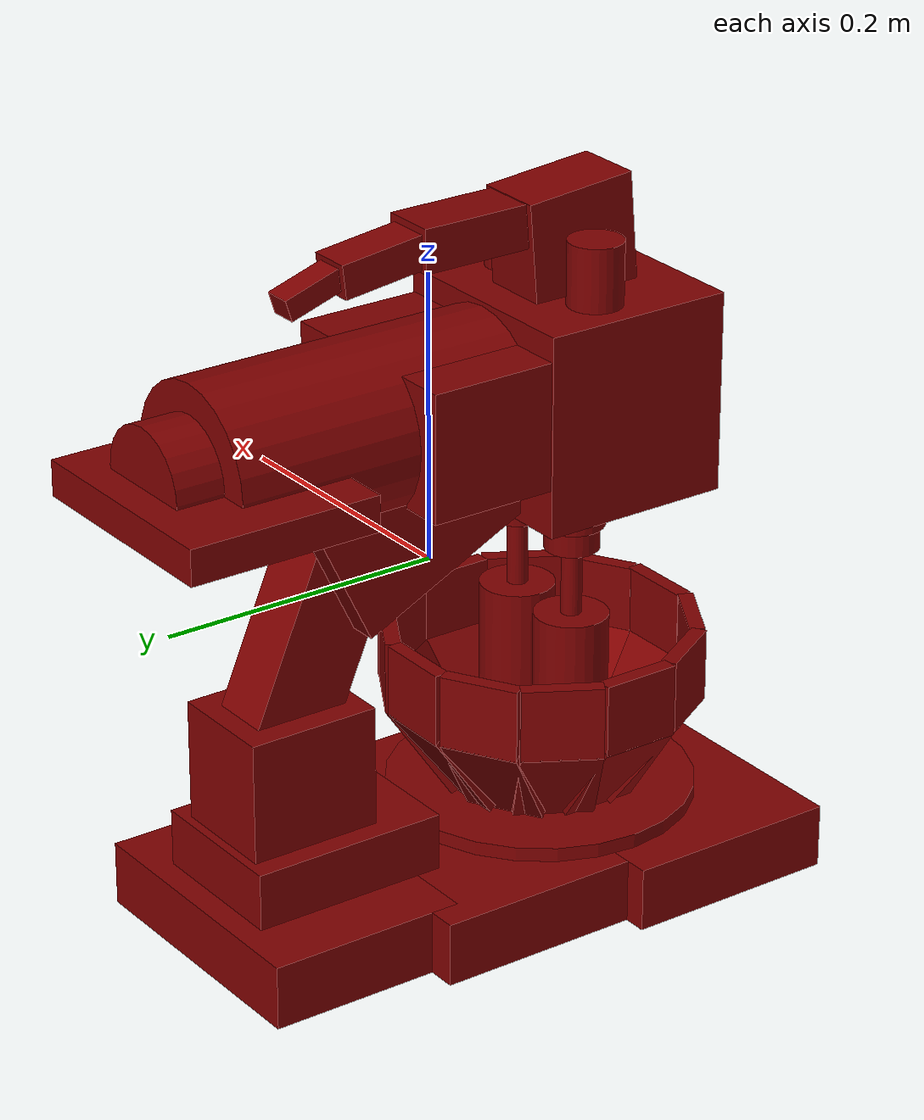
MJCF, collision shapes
<?xml version='1.0' encoding='UTF-8'?>
<mujoco model="model">
  <compiler angle="radian"/>
  <asset>
    <mesh file="visuals/Blender001.obj" name="Blender001_vis"/>
    <mesh file="visuals/Blender002.obj" name="Blender002_vis"/>
    <mesh file="visuals/Body001.obj" name="Body001_vis"/>
    <mesh file="visuals/Button001.obj" name="Button001_vis"/>
    <mesh file="visuals/Container001.obj" name="Container001_vis"/>
    <mesh file="visuals/Knob001.obj" name="Knob001_vis"/>
    <mesh file="visuals/Lid001.obj" name="Lid001_vis"/>
    <mesh file="visuals/Lid002.obj" name="Lid002_vis"/>
    <texture file="visuals/T_BC001.png" name="Body001_material" type="2d"/>
    <material name="Body001_material" rgba="1 1 1 1.0" texture="Body001_material" shininess="0.5" specular="0.3103448502657381"/>
    <texture file="visuals/T_BC001.png" name="Container001_material" type="2d"/>
    <material name="Container001_material" rgba="1 1 1 1.0" texture="Container001_material" shininess="0.5" specular="0.3103448502657381"/>
    <texture file="visuals/T_BC001.png" name="Lid001_material" type="2d"/>
    <material name="Lid001_material" rgba="1 1 1 1.0" texture="Lid001_material" shininess="0.5" specular="0.3103448502657381"/>
    <texture file="visuals/T_BC001.png" name="Blender001_material" type="2d"/>
    <material name="Blender001_material" rgba="1 1 1 1.0" texture="Blender001_material" shininess="5" specular="10"/>
    <texture file="visuals/T_BC001.png" name="Blender002_material" type="2d"/>
    <material name="Blender002_material" rgba="1 1 1 1.0" texture="Blender002_material" shininess="5" specular="10"/>
    <texture file="visuals/T_BC001.png" name="Button001_material" type="2d"/>
    <material name="Button001_material" rgba="1 1 1 1.0" texture="Button001_material" shininess="0.5" specular="0.3103448502657381"/>
    <texture file="visuals/T_BC001.png" name="Knob001_material" type="2d"/>
    <material name="Knob001_material" rgba="1 1 1 1.0" texture="Knob001_material" shininess="0.5" specular="0.3103448502657381"/>
    <texture file="visuals/T_BC001.png" name="Lid002_material" type="2d"/>
    <material name="Lid002_material" rgba="1 1 1 1.0" texture="Lid002_material" shininess="1" specular="1"/>
  </asset>
  <default>
    <default class="visual">
      <geom conaffinity="0" contype="0" group="1" type="mesh"/>
    </default>
    <default class="collision">
      <geom group="0" rgba="0.5 0 0 0.5"/>
    </default>
    <default class="spawn">
      <geom group="0" rgba="1 1 1 0.5" contype="0" conaffinity="0"/>
      <site group="0" rgba="1 1 1 0.5"/>
    </default>
    <default class="region">
      <geom group="1" conaffinity="0" contype="0" rgba="0 1 0 0"/>
    </default>
  </default>
  <worldbody>
    <body>
      <body name="object">
        <geom mesh="Body001_vis" type="mesh" solimp="0.998 0.998 0.001" solref="0.001 1" density="100" friction="0.95 0.3 0.1" class="visual" material="Body001_material"/>
        <geom class="collision" type="box" pos="4.897843278661619e-17 -0.15366870164871216 -0.22057925164699554" size="0.1356559693813324 0.07646315544843674 0.022550884634256363" quat="1.0 0.0 0.0 0.0"/>
        <geom class="collision" type="box" pos="4.897843278661619e-17 -0.008576542139053345 -0.22057925164699554" size="0.1193213015794754 0.07646191120147705 0.022550150752067566" quat="1.0 0.0 0.0 0.0"/>
        <geom class="collision" type="box" pos="4.897843278661619e-17 0.1180645227432251 -0.22057925164699554" size="0.09913986176252365 0.07030613720417023 0.022550884634256363" quat="1.0 0.0 0.0 0.0"/>
        <geom class="collision" type="box" pos="5.055353356542741e-17 0.10056693106889725 -0.18038208782672882" size="0.05379757285118103 0.07030418515205383 0.022550884634256363" quat="1.0 0.0 0.0 0.0"/>
        <geom class="collision" type="box" pos="5.055353356542741e-17 0.11744346469640732 -0.11538463085889816" size="0.03893378749489784 0.04708361625671387 0.042576249688863754" quat="1.0 0.0 0.0 0.0"/>
        <geom class="collision" type="box" pos="6.97932649224882e-17 0.09694836288690567 -0.028736550360918045" size="0.02191270887851715 0.030921725556254387 0.061389487236738205" quat="0.9798327088356018 0.1998196840286255 4.4369015145278743e-17 -2.040742456584048e-23"/>
        <geom class="collision" type="cylinder" pos="-2.527289488796214e-11 -0.09217732399702072 -0.19344469904899597" size="0.1068195328116417 0.005278684198856354" quat="1.0 0.0 0.0 0.0"/>
        <body name="Container001">
          <joint axis="0.0 0.0 1.0" pos="-6.419569444915396e-07 -0.09217473864555359 -0.13971681892871857" limited="true" name="Container001_joint" range="0.0 0.1" type="slide" damping="1" frictionloss="1" armature=".01" stiffness="0.05"/>
          <geom mesh="Container001_vis" type="mesh" solimp="0.998 0.998 0.001" solref="0.001 1" density="100" friction="0.95 0.3 0.1" class="visual" material="Container001_material"/>
          <geom class="collision" type="cylinder" pos="3.582163454751708e-10 -0.09217731654644012 -0.18256720900535583" size="0.05979258567094803 0.0018684215610846877" quat="1.0 -8.146034247147327e-08 0.0 0.0"/>
          <geom class="collision" type="box" pos="-0.09004050493240356 -0.04263290762901306 -0.09583552181720734" size="0.005457259248942137 0.02767772041261196 0.025780651718378067" quat="0.9659258127212524 -7.868467122307266e-08 2.1083510048924836e-08 -0.2588191032409668"/>
          <geom class="collision" type="box" pos="-0.07159455865621567 -0.05328269302845001 -0.1499294638633728" size="0.005457259248942137 0.02767772041261196 0.03907692804932594" quat="0.9216431975364685 -0.07746776193380356 -0.289113312959671 -0.24695360660552979"/>
          <geom class="collision" type="box" pos="-0.10274834930896759 -0.09429019689559937 -0.09583552181720734" size="0.005457215942442417 0.027677280828356743 0.025780655443668365" quat="1.0 0.0 0.0 0.0"/>
          <geom class="collision" type="box" pos="-0.08144880831241608 -0.09429019689559937 -0.1499294638633728" size="0.0054572587832808495 0.027677718549966812 0.03907692804932594" quat="0.9541552662849426 -7.772581511744647e-08 -0.29931214451789856 -6.459730883534576e-08"/>
          <geom class="collision" type="box" pos="-0.002116084797307849 0.01057298481464386 -0.09583552181720734" size="0.02767743170261383 0.005457170773297548 0.025780655443668365" quat="1.0 0.0 0.0 0.0"/>
          <geom class="collision" type="box" pos="-0.0021160913165658712 -0.010726572945713997 -0.1499294638633728" size="0.0054572587832808495 0.027677718549966812 0.03907692804932594" quat="0.6746895909309387 -0.2116457223892212 -0.21164558827877045 -0.6746897101402283"/>
          <geom class="collision" type="box" pos="-0.05320652946829796 -0.004250332713127136 -0.09583552181720734" size="0.005457259248942137 0.027677716687321663 0.025780653581023216" quat="0.8660253882408142 -7.054673289985658e-08 4.073017478845031e-08 -0.5"/>
          <geom class="collision" type="box" pos="-0.0425567626953125 -0.022696280851960182 -0.1499294638633728" size="0.005457259248942137 0.027677718549966812 0.03907692804932594" quat="0.826322615146637 -0.14965614676475525 -0.2592118978500366 -0.4770776927471161"/>
          <geom class="collision" type="box" pos="0.08792376518249512 -0.03896884247660637 -0.09583552181720734" size="0.005457259248942137 0.027677718549966812 0.025780651718378067" quat="0.2588190734386444 -2.1083486956285924e-08 7.868464990679058e-08 -0.9659258127212524"/>
          <geom class="collision" type="box" pos="0.06947781145572662 -0.04961860552430153 -0.1499294638633728" size="0.005457259248942137 0.027677716687321663 0.03907692804932594" quat="0.2469535619020462 -0.289113312959671 -0.07746762782335281 -0.9216431975364685"/>
          <geom class="collision" type="box" pos="0.049541182816028595 -0.0021348893642425537 -0.09583552181720734" size="0.005457259248942137 0.027677716687321663 0.025780653581023216" quat="0.4999999701976776 -4.0730171235736634e-08 7.054672579442922e-08 -0.866025447845459"/>
          <geom class="collision" type="box" pos="0.038891419768333435 -0.020580830052495003 -0.1499294638633728" size="0.005457259248942137 0.027677718549966812 0.03907692804932594" quat="0.47707751393318176 -0.2592118978500366 -0.14965596795082092 -0.8263227939605713"/>
          <geom class="collision" type="box" pos="0.0900392159819603 -0.1417165845632553 -0.09583552181720734" size="0.005457259248942137 0.02767772041261196 0.025780651718378067" quat="0.25881919264793396 -2.108350116714064e-08 -7.868464280136322e-08 0.9659258127212524"/>
          <geom class="collision" type="box" pos="0.0715932622551918 -0.13106679916381836 -0.1499294638633728" size="0.005457259248942137 0.027677718549966812 0.03907692804932594" quat="0.2469538152217865 0.28911328315734863 -0.07746781408786774 0.9216431379318237"/>
          <geom class="collision" type="box" pos="0.10274706780910492 -0.0900593176484108 -0.09583552181720734" size="0.0054572345688939095 0.027677414938807487 0.025780655443668365" quat="1.0 0.0 0.0 0.0"/>
          <geom class="collision" type="box" pos="0.0814475268125534 -0.0900593027472496 -0.1499294638633728" size="0.005457259248942137 0.027677718549966812 0.03907692804932594" quat="2.057737304994589e-07 0.2993119955062866 -1.2201191168514924e-07 0.9541553258895874"/>
          <geom class="collision" type="box" pos="0.002114806557074189 -0.19492246210575104 -0.09583552181720734" size="0.027677536010742188 0.005457203835248947 0.025780655443668365" quat="1.0 0.0 0.0 0.0"/>
          <geom class="collision" type="box" pos="0.002114822156727314 -0.17362290620803833 -0.1499294489622116" size="0.005457259248942137 0.027677718549966812 0.03907692804932594" quat="0.6746896505355835 0.21164557337760925 -0.21164566278457642 0.6746896505355835"/>
          <geom class="collision" type="box" pos="0.05320524424314499 -0.18009914457798004 -0.09583552181720734" size="0.005457259714603424 0.027677716687321663 0.025780653581023216" quat="0.5000000596046448 -4.0730171235736634e-08 -7.054671868900186e-08 0.8660253882408142"/>
          <geom class="collision" type="box" pos="0.04255544766783714 -0.16165322065353394 -0.1499294489622116" size="0.005457259248942137 0.027677718549966812 0.03907692804932594" quat="0.4770779311656952 0.25921180844306946 -0.14965617656707764 0.8263225555419922"/>
          <geom class="collision" type="box" pos="-0.08792506158351898 -0.14538060128688812 -0.09583552181720734" size="0.005457259248942137 0.027677718549966812 0.025780651718378067" quat="0.9659258723258972 -7.868464280136322e-08 -2.1083488732642763e-08 0.25881892442703247"/>
          <geom class="collision" type="box" pos="-0.06947913020849228 -0.13473081588745117 -0.1499294489622116" size="0.005457259248942137 0.02767772041261196 0.03907692804932594" quat="0.9216433167457581 0.07746749371290207 -0.289113312959671 0.24695318937301636"/>
          <geom class="collision" type="box" pos="-0.049542542546987534 -0.18221455812454224 -0.09583552181720734" size="0.005457259248942137 0.027677716687321663 0.025780653581023216" quat="0.8660256266593933 -7.054674000528394e-08 -4.073013215588617e-08 0.49999961256980896"/>
          <geom class="collision" type="box" pos="-0.0388927087187767 -0.16376863420009613 -0.1499294489622116" size="0.005457259248942137 0.02767772041261196 0.03907692804932594" quat="0.8263227343559265 0.1496559977531433 -0.2592119872570038 0.47707751393318176"/>
        </body>
        <body name="Lid001">
          <joint axis="-1.0 0.0 0.0" pos="3.490754142256003e-19 0.0770430639386177 0.001572095905430615" limited="true" name="Lid001_joint" range="0.0 1.2217304763960306" type="hinge" damping="1" frictionloss="1" armature=".01" stiffness="0.05"/>
          <geom mesh="Lid001_vis" type="mesh" solimp="0.998 0.998 0.001" solref="0.001 1" density="100" friction="0.95 0.3 0.1" class="visual" material="Lid001_material"/>
          <geom class="collision" type="box" pos="0.03379953280091286 0.024303270503878593 0.052719295024871826" size="0.010130075737833977 0.07784977555274963 0.0425751693546772" quat="0.9744470715522766 -0.22461730241775513 4.9875056865954267e-17 -8.040185716919941e-25"/>
          <geom class="collision" type="box" pos="3.495029166758042e-18 -0.11069067567586899 0.10132018476724625" size="0.07700555771589279 0.06860920786857605 0.06966609507799149" quat="1.0 0.0 0.0 0.0"/>
          <geom class="collision" type="box" pos="-0.009870403446257114 0.16956499218940735 0.09340831637382507" size="0.0818767100572586 0.06860904395580292 0.012502308934926987" quat="1.0 0.0 0.0 0.0"/>
          <geom class="collision" type="cylinder" pos="8.929079697850284e-11 0.06694287806749344 0.10819568485021591" size="0.05999843031167984 0.11345064640045166" quat="0.7071068286895752 -0.7071067690849304 -1.5700924318127872e-16 5.9269340452702814e-24"/>
          <geom class="collision" type="box" pos="1.7201866038918002e-18 -0.004335409961640835 0.10931336879730225" size="0.07553490996360779 0.05218582972884178 0.044405918568372726" quat="1.0 0.0 0.0 0.0"/>
          <geom class="collision" type="cylinder" pos="5.845690598249575e-11 0.19693967700004578 0.10819568485021591" size="0.03927985951304436 0.017913704738020897" quat="0.7071068286895752 -0.7071067690849304 -1.5700924318127872e-16 5.9269340452702814e-24"/>
          <geom class="collision" type="cylinder" pos="0.04477623477578163 -0.09886237978935242 0.19277697801589966" size="0.01888052560389042 0.022379856556653976" quat="1.0 0.0 0.0 0.0"/>
          <geom class="collision" type="cylinder" pos="-0.0449797622859478 -0.09886237978935242 0.19277697801589966" size="0.01888052560389042 0.022379856556653976" quat="1.0 0.0 0.0 0.0"/>
          <geom class="collision" type="cylinder" pos="-0.03032296895980835 -0.09469088912010193 0.026877596974372864" size="0.021983839571475983 0.015149839222431183" quat="1.0 0.0 0.0 0.0"/>
          <geom class="collision" type="cylinder" pos="0.030311506241559982 -0.09469088912010193 0.026877596974372864" size="0.021983839571475983 0.015149839222431183" quat="1.0 0.0 0.0 0.0"/>
          <geom class="collision" type="box" pos="-0.03340189531445503 0.024303270503878593 0.052719295024871826" size="0.010130075737833977 0.07784977555274963 0.0425751693546772" quat="0.9744470715522766 -0.22461730241775513 4.9875056865954267e-17 -8.040185716919941e-25"/>
          <geom class="collision" type="box" pos="4.8458351248279597e-17 0.042638495564460754 0.2182370126247406" size="0.014965485781431198 0.03164741024374962 0.011953622102737427" quat="0.9981939196586609 -0.0600740984082222 -1.333912944728115e-17 -1.2620101112340989e-24"/>
          <geom class="collision" type="box" pos="4.639046258262358e-17 0.09226008504629135 0.2089240700006485" size="0.009812728501856327 0.02075091190636158 0.007837877608835697" quat="0.987870991230011 -0.1552768349647522 -3.447837023886789e-17 -4.8368757912441194e-24"/>
          <geom class="collision" type="box" pos="4.9572748821845737e-17 -0.025054283440113068 0.22325581312179565" size="0.01911025494337082 0.04041232168674469 0.01526417676359415" quat="1.0 0.0 0.0 0.0"/>
          <geom class="collision" type="box" pos="4.494209910854528e-17 -0.10600404441356659 0.20240122079849243" size="0.023966485634446144 0.04041215777397156 0.040237437933683395" quat="0.9991382956504822 -0.041504986584186554 -9.215958348504428e-18 1.0491601548254312e-24"/>
          <body name="Blender001">
            <joint axis="0.0 0.0 1.0" pos="0.030343782156705856 -0.09459744393825531 0.00937691330909729" limited="false" name="Blender001_joint" range="0 360" type="hinge" damping="1" frictionloss="1" armature=".01" stiffness="0.05"/>
            <geom mesh="Blender001_vis" type="mesh" solimp="0.998 0.998 0.001" solref="0.001 1" density="100" friction="0.95 0.3 0.1" class="visual" material="Blender001_material"/>
            <geom class="collision" type="cylinder" pos="0.03027970716357231 -0.09423885494470596 -0.1116333156824112" size="0.026116803288459778 0.05799999460577965" quat="1.0 0.0 0.0 0.0"/>
            <geom class="collision" type="cylinder" pos="0.030279703438282013 -0.09423884749412537 -0.02794725075364113" size="0.007174868136644363 0.027528168633580208" quat="1.0 0.0 0.0 0.0"/>
            <geom class="collision" type="cylinder" pos="0.030279703438282013 -0.09423884749412537 0.002789929276332259" size="0.01890581101179123 0.007784476038068533" quat="1.0 0.0 0.0 0.0"/>
          </body>
          <body name="Blender002">
            <joint axis="0.0 0.0 1.0" pos="-0.030550582334399223 -0.09459752589464188 0.009376920759677887" limited="false" name="Blender002_joint" range="0 360" type="hinge" damping="1" frictionloss="1" armature=".01" stiffness="0.05"/>
            <geom mesh="Blender002_vis" type="mesh" solimp="0.998 0.998 0.001" solref="0.001 1" density="100" friction="0.95 0.3 0.1" class="visual" material="Blender002_material"/>
            <geom class="collision" type="cylinder" pos="-0.0303424634039402 -0.0942985862493515 -0.1110205203294754" size="0.025721095502376556 0.05799999460577965" quat="1.0 0.0 0.0 0.0"/>
            <geom class="collision" type="cylinder" pos="-0.0303424671292305 -0.09429857134819031 -0.027947265654802322" size="0.007174868136644363 0.027528168633580208" quat="1.0 0.0 0.0 0.0"/>
            <geom class="collision" type="cylinder" pos="-0.03034246526658535 -0.0942985787987709 0.0027899143751710653" size="0.01890581101179123 0.007784476038068533" quat="1.0 0.0 0.0 0.0"/>
          </body>
          <body name="Button001">
            <joint axis="-1.0 0.0 0.0" pos="0.06505093723535538 0.07470649480819702 0.10930435359477997" limited="true" name="Button001_joint" range="0.0 0.002" type="slide" damping="1" frictionloss="1" armature=".01" stiffness="0.05"/>
            <geom mesh="Button001_vis" type="mesh" solimp="0.998 0.998 0.001" solref="0.001 1" density="100" friction="0.95 0.3 0.1" class="visual" material="Button001_material"/>
            <geom class="collision" type="box" pos="0.06518220156431198 0.07470649480819702 0.10925528407096863" size="0.0027336468920111656 0.011490195989608765 0.007924982346594334" quat="1.0 0.0 0.0 0.0"/>
          </body>
          <body name="Knob001">
            <joint axis="-1.0 3.2782554626464844e-07 1.4901161193847656e-07" pos="0.0821300595998764 -0.10762324929237366 0.10088136047124863" limited="true" name="Knob001_joint" range="0.0 4.886921905584122" type="hinge" damping="0.05" armature="0.001"/>
            <geom mesh="Knob001_vis" type="mesh" solimp="0.998 0.998 0.001" solref="0.001 1" density="100" friction="0.95 0.3 0.1" class="visual" material="Knob001_material"/>
            <geom class="collision" type="box" pos="0.08448751270771027 -0.11808643490076065 0.10670458525419235" size="0.004410026594996452 0.0016525975661352277 0.0013687432510778308" quat="0.9659258127212524 -0.2588191032409668 -5.746938552619136e-17 -2.406693728895582e-24"/>
            <geom class="collision" type="cylinder" pos="0.08369065821170807 -0.10762324929237366 0.10088136047124863" size="0.010440489277243614 0.004135713912546635" quat="0.7071068286895752 -4.750302551315144e-08 0.7071067094802856 4.7503014855010406e-08"/>
            <geom class="collision" type="cylinder" pos="0.07958532124757767 -0.10762324929237366 0.10088136047124863" size="0.014266512356698513 0.0018209816189482808" quat="0.7071068286895752 -4.750302551315144e-08 0.7071067094802856 4.7503014855010406e-08"/>
          </body>
          <body name="Lid002">
            <geom mesh="Lid002_vis" type="mesh" solimp="0.998 0.998 0.001" solref="0.001 1" density="100" friction="0.95 0.3 0.1" class="visual" material="Lid002_material"/>
          </body>
        </body>
        <geom class="region" name="reg_main" type="box" pos="0.0 1.4901161193847656e-08 7.450580596923828e-09" size="0.13844886422157288 0.22677750885486603 0.23983952403068542"/>
      </body>
    </body>
  </worldbody>
  <actuator>
    <motor name="Container001_joint_actuator" joint="Container001_joint" gear="10"/>
    <motor name="Lid001_joint_actuator" joint="Lid001_joint" gear="10"/>
    <motor name="Blender001_joint_actuator" joint="Blender001_joint" gear="10"/>
    <motor name="Blender002_joint_actuator" joint="Blender002_joint" gear="10"/>
    <motor name="Button001_joint_actuator" joint="Button001_joint" gear="0.5"/>
    <motor name="Knob001_joint_actuator" joint="Knob001_joint" gear="0.5"/>
  </actuator>
</mujoco>
